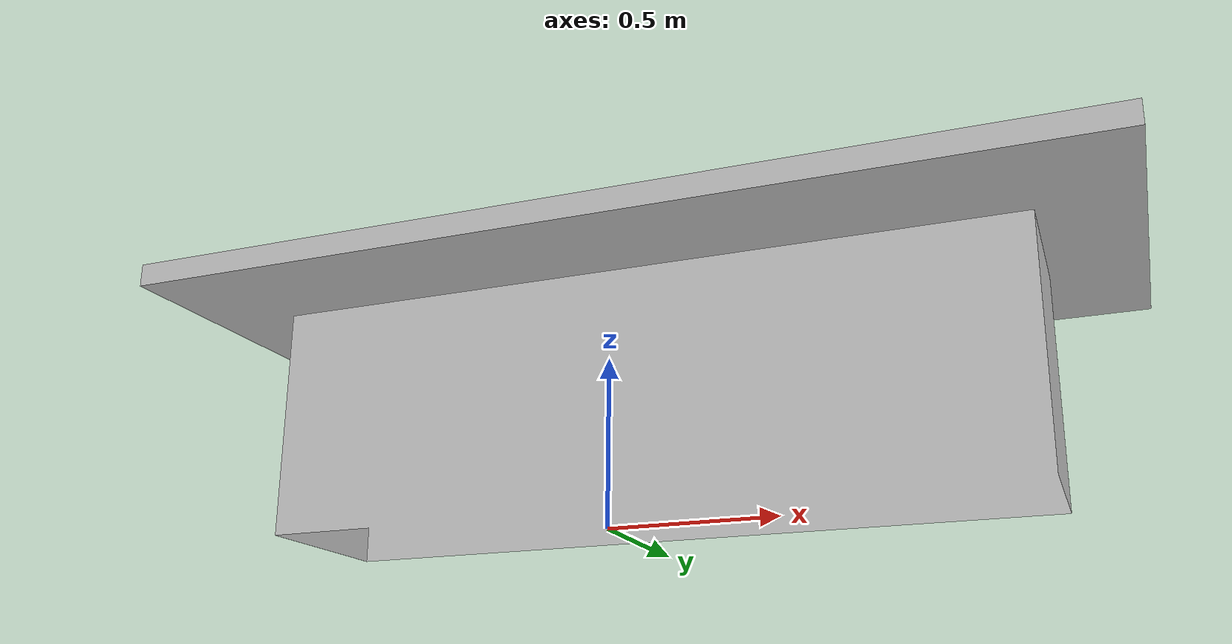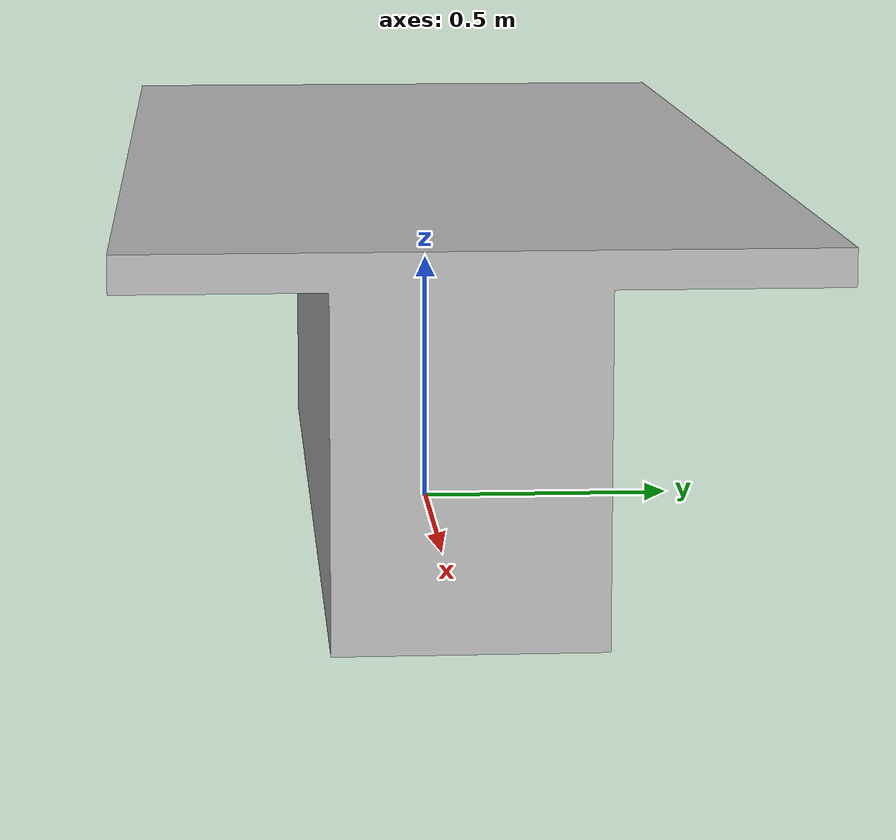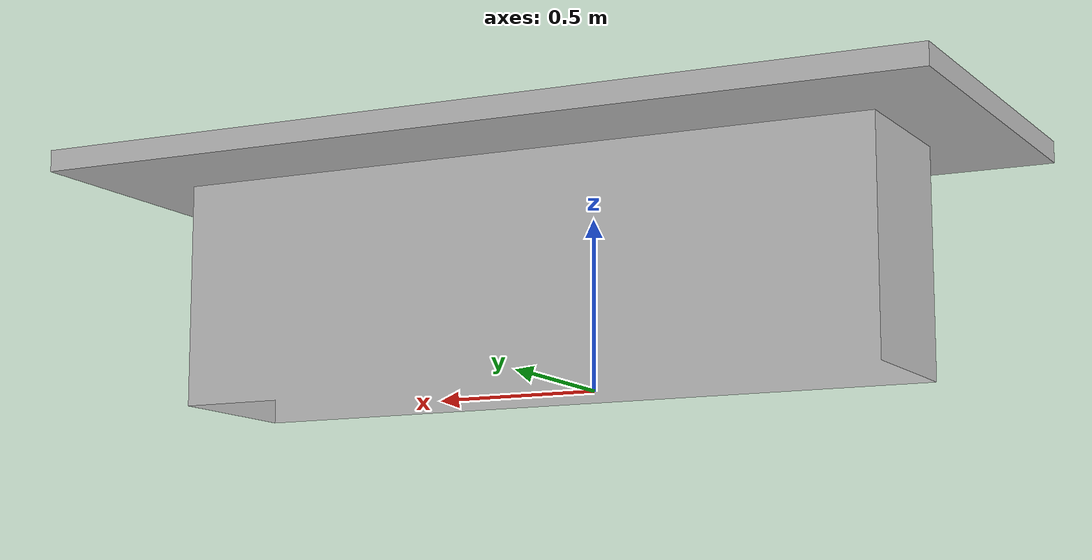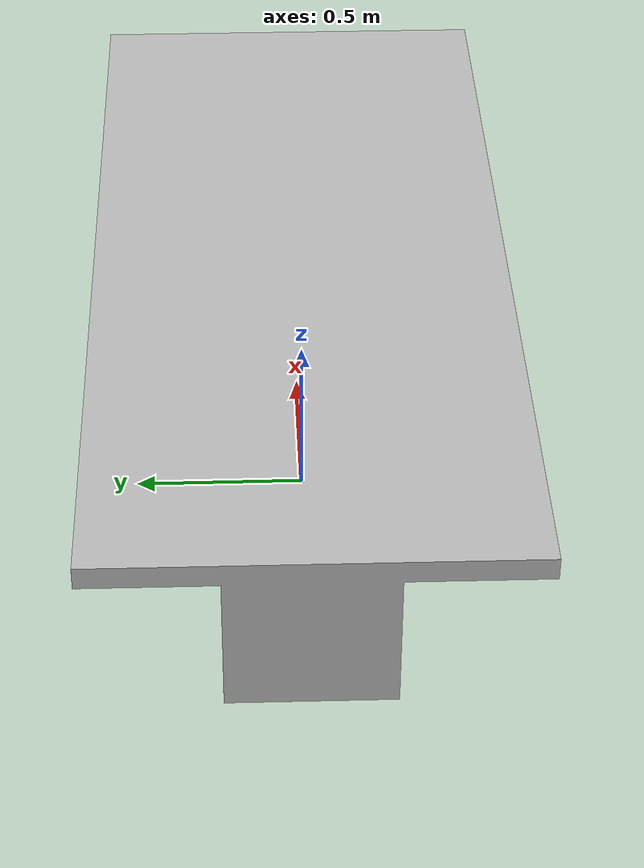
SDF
<sdf version="1.5">
  <model name="conference_table_small">
    <static>true</static>
    <link name="link">
      <collision name="collision">
        <pose>0.152873 -0.000776 0.367474 0 0 0</pose>
        <geometry>
          <box>
            <size>2.709400 1.217630 0.742359</size>
          </box>
        </geometry>
      </collision>
      <visual name="visual">
        <geometry>
          <mesh>
            <uri>model://conference_table_small/meshes/conference_table_small.obj</uri>
            <scale>0.01 0.01 0.01</scale>
          </mesh>
        </geometry>
      </visual>
    </link>
  </model>
</sdf>
